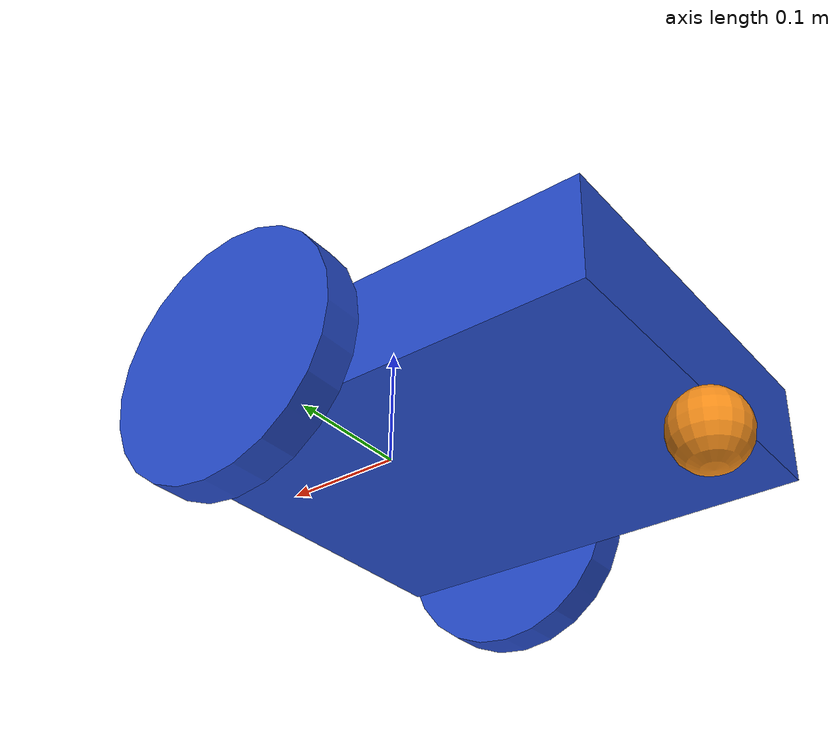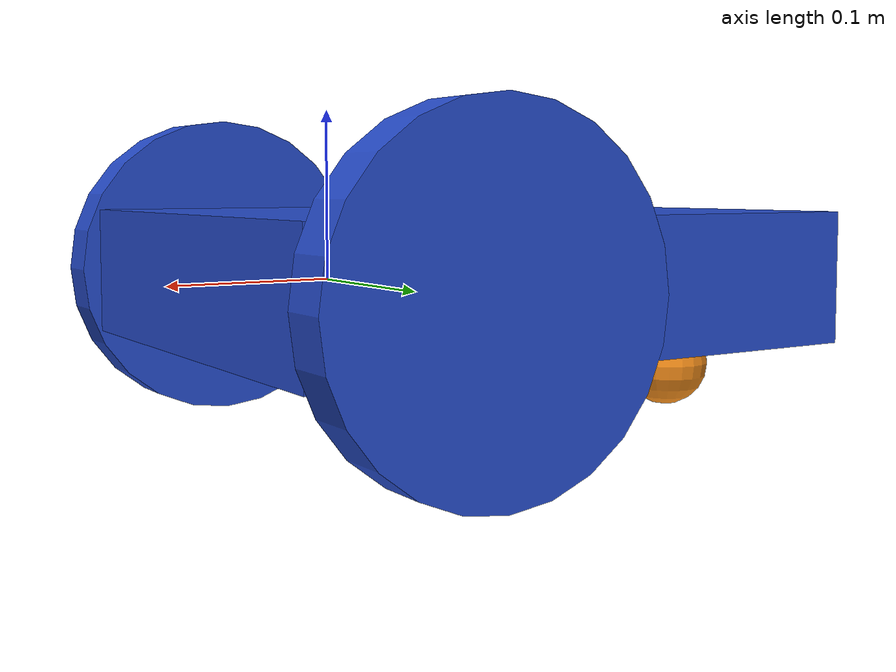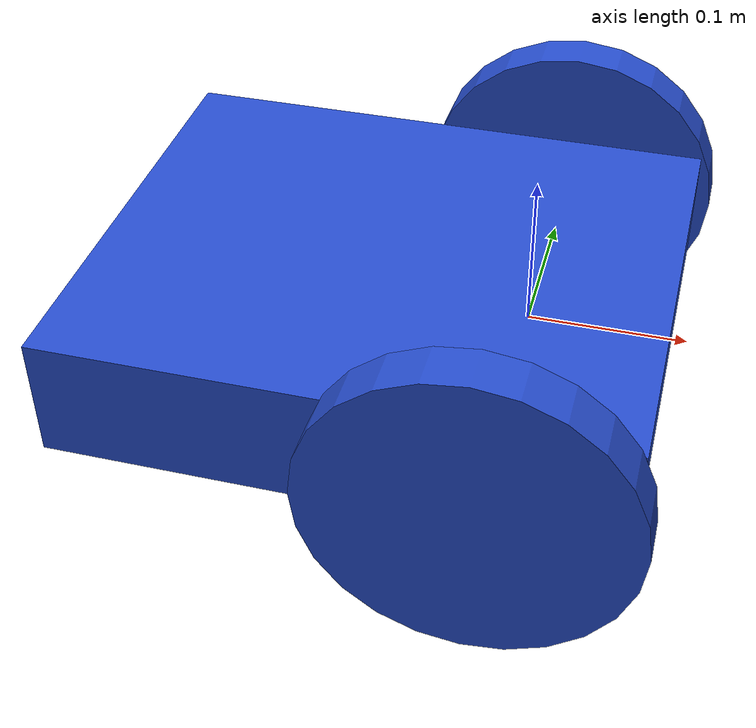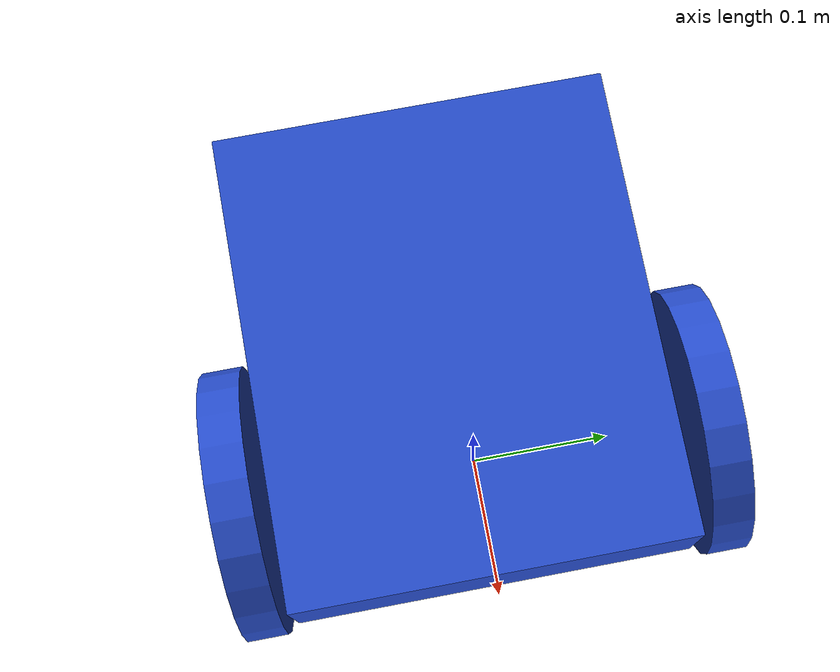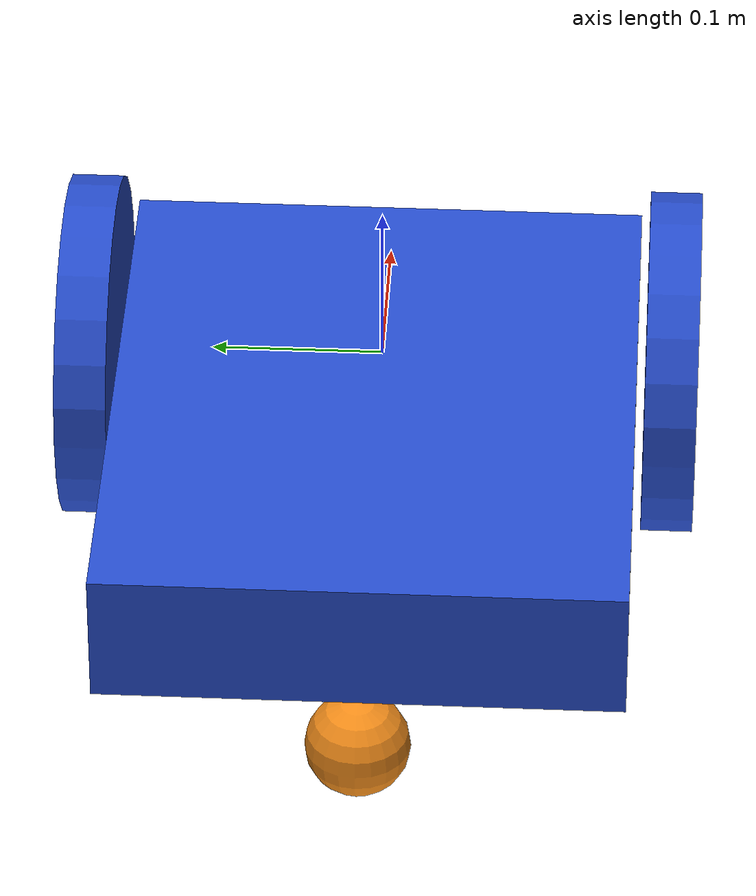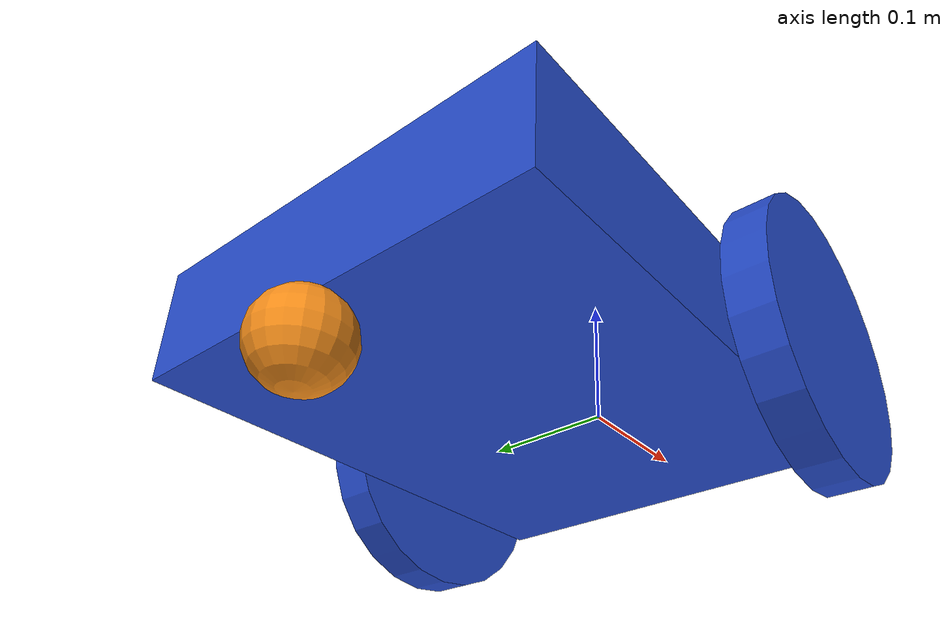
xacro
<?xml version="1.0" ?>

<robot name="idealfish" xmlns:xacro="https://www.ros.org/wiki/xacro" >
  <xacro:include filename="$(find idealfish_description)/urdf/base.gazebo.xacro"/>
  <xacro:include filename="$(find idealfish_description)/urdf/wheel.macro.xacro"/>
  <xacro:include filename="$(find idealfish_description)/urdf/base.transmission.xacro"/>
  <xacro:property name="M_PI" value="3.14159"/>

  <link name="base_link">
    <visual>
      <origin xyz="0 0 0" rpy="0 0 0"/>
      <geometry>
        <box size="0.01 0.01 0.01" />
      </geometry>
      <material name="White" />
    </visual>
  </link>

  <joint name="base_link_joint" type="fixed">
    <origin xyz="-0.09 0 0" rpy="0 0 0"/>
    <parent link="base_link"/>
    <child link="body_link" />
  </joint>

  <link name="body_link">
    <!-- base -->
    <inertial>
      <mass value="10"/>
      <origin rpy="0 0 0" xyz="0 0 0"/>
      <inertia ixx="0.0803333333333" ixy="0" ixz="0" iyy="0.11333333333" iyz="0" izz="0.183"/>
    </inertial>
    <collision name="collision_base_link">
      <geometry>
        <box size="0.36 0.3 0.08"/>
      </geometry>
    </collision>
    <visual>
      <origin rpy="0 0 0" xyz="0 0 0"/>
      <geometry>
        <box size="0.36 0.3 0.08"/>
      </geometry>
      <material name="blue"/>
    </visual>

    <!-- caster back -->
    <collision name="caster_front_collision">
      <origin rpy=" 0 0 0" xyz="-0.18 0 -0.07"/>
      <geometry>
        <sphere radius="0.03"/>
      </geometry>
      <surface>
        <friction>
          <ode>
            <mu>0</mu>
            <mu2>0</mu2>
            <slip1>1.0</slip1>
            <slip2>1.0</slip2>
          </ode>
        </friction>
      </surface>
    </collision>
    <visual name="caster_front_visual">
      <origin rpy=" 0 0 0" xyz="-0.18 0 -0.07"/>
      <geometry>
        <sphere radius="0.03"/>
      </geometry>
    </visual>
    </link>

  <!-- Create wheel right, left link -->
  <xacro:link_wheel name="link_right_wheel"/>
  <xacro:link_wheel name="link_left_wheel"/>

  <!-- Create wheel right, left joint -->
  <xacro:joint_wheel name="joint_right_wheel" child="link_right_wheel" origin_xyz="-0.0 0.17 0"/><!--width = 0.3/2+0.005+0.03/2-->
  <xacro:joint_wheel name="joint_left_wheel" child="link_left_wheel" origin_xyz="-0.0 -0.17 0"/>

  <!-- Create wheel right, left transmission -->
  <xacro:right_wheel_trans/>
  <xacro:left_wheel_trans/>
</robot>

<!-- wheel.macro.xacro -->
<robot xmlns:xacro="http://www.ros.org/wiki/xacro">
    <xacro:macro name="link_wheel" params="name">
        <link name="${name}">
            <inertial>
              <mass value="2.5"/>
              <origin rpy="0 ${M_PI/2} ${M_PI/2}" xyz="0 0 0"/>
              <inertia  ixx="0.02467" ixy="0" ixz="0" iyy="0.04411" iyz="0" izz="0.02467" />
            </inertial>
            <collision name="link_right_wheel_collision">
              <origin rpy="0 ${M_PI/2} ${M_PI/2}" xyz="0 0 0"/>
              <geometry>
                <cylinder length="0.03" radius="0.1"/>
              </geometry>
            </collision>
            <visual name="${name}_visual">
              <origin rpy="0 ${M_PI/2} ${M_PI/2}" xyz="0 0 0"/>
              <geometry>
                <cylinder length="0.03" radius="0.1"/>
              </geometry>
            </visual>
        </link>
    </xacro:macro>

    <xacro:macro name="joint_wheel" params="name child origin_xyz">
      <joint name="${name}" type="continuous">
        <origin rpy="0 0 0" xyz="${origin_xyz}"/>
        <child link="${child}"/>
        <parent link="base_link"/>
        <axis rpy="0 0 0" xyz="0 1 0"/>
        <limit effort="10000" velocity="1000"/>
        <joint_properties damping="1.0" friction="1.0"/>
      </joint>
    </xacro:macro>

</robot>
